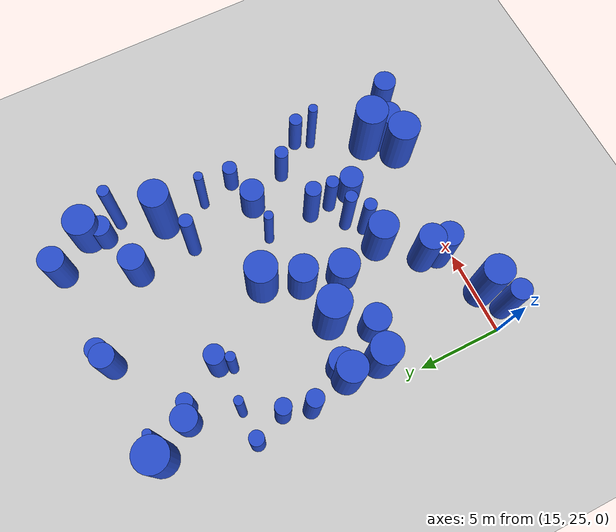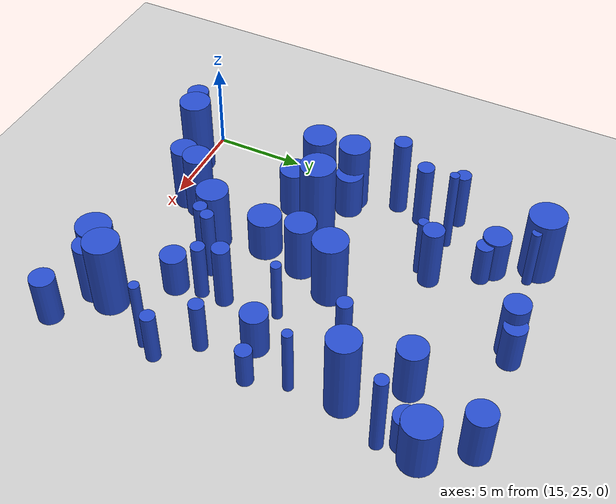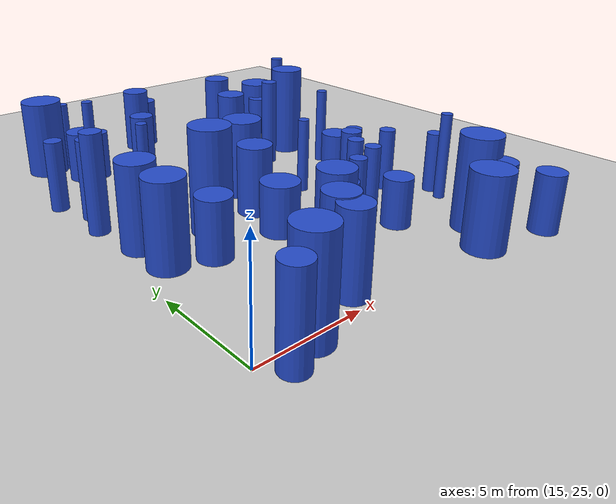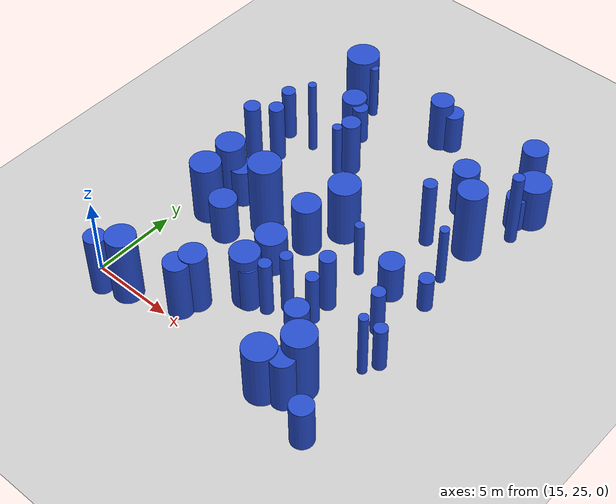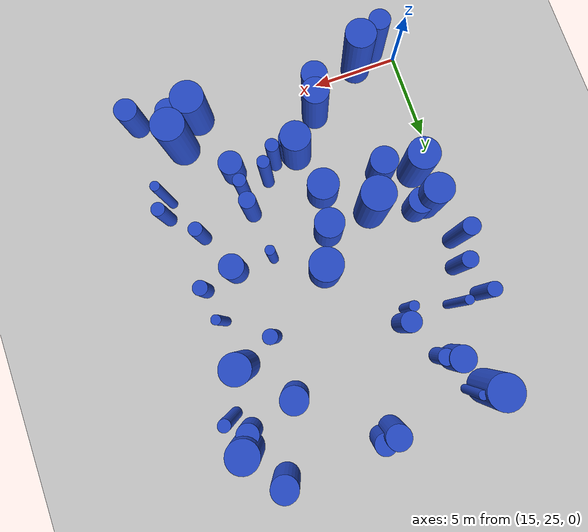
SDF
<sdf version="1.6">
 <world name="default">
  <model name="ground_plane">
   <static>1</static>
   <link name="link">
    <collision name="collision">
     <geometry><plane><normal>0 0 1</normal><size>100 100</size></plane></geometry>
     <surface><friction><ode><mu>100</mu><mu2>50</mu2></ode></friction></surface>
    </collision>
    <visual name="visual">
     <cast_shadows>0</cast_shadows>
     <geometry><plane><normal>0 0 1</normal><size>100 100</size></plane></geometry>
     <material>
      <script><uri>file://media/materials/scripts/gazebo.material</uri><name>Gazebo/Grey</name></script>
     </material>
    </visual>
   </link>
  </model>
  <model name="2">
   <static>0</static>
   <link name="link">
    <inertial>
     <mass>2</mass>
     <inertia><ixx>1.55938</ixx><ixy>0</ixy><ixz>0</ixz><iyy>1.55938</iyy><iyz>0</iyz><izz>0.44286</izz></inertia>
    </inertial>
    <collision name="collision">
     <geometry><cylinder><length>2.83332</length><radius>0.665477</radius></cylinder></geometry>
     <surface><contact><collide_without_contact>1</collide_without_contact></contact></surface>
    </collision>
    <visual name="visual">
     <geometry><cylinder><length>2.83332</length><radius>0.665477</radius></cylinder></geometry>
     <material>
      <script><uri>file://media/materials/scripts/gazebo.material</uri><name>Gazebo/Blue</name></script>
     </material>
    </visual>
    <gravity>0</gravity>
   </link>
   <pose>30.9281 23.9603 1.41666 0 -0 0</pose>
  </model>
  <model name="8">
   <static>0</static>
   <link name="link">
    <inertial>
     <mass>2</mass>
     <inertia><ixx>2.56634</ixx><ixy>0</ixy><ixz>0</ixz><iyy>2.56634</iyy><iyz>0</iyz><izz>0.222806</izz></inertia>
    </inertial>
    <collision name="collision">
     <geometry><cylinder><length>3.83792</length><radius>0.472024</radius></cylinder></geometry>
     <surface><contact><collide_without_contact>1</collide_without_contact></contact></surface>
    </collision>
    <visual name="visual">
     <geometry><cylinder><length>3.83792</length><radius>0.472024</radius></cylinder></geometry>
     <material>
      <script><uri>file://media/materials/scripts/gazebo.material</uri><name>Gazebo/Blue</name></script>
     </material>
    </visual>
    <gravity>0</gravity>
   </link>
   <pose>26.1172 31.3274 1.91896 0 -0 0</pose>
  </model>
  <model name="13">
   <static>0</static>
   <link name="link">
    <inertial>
     <mass>2</mass>
     <inertia><ixx>1.38583</ixx><ixy>0</ixy><ixz>0</ixz><iyy>1.38583</iyy><iyz>0</iyz><izz>0.558637</izz></inertia>
    </inertial>
    <collision name="collision">
     <geometry><cylinder><length>2.57664</length><radius>0.74742</radius></cylinder></geometry>
     <surface><contact><collide_without_contact>1</collide_without_contact></contact></surface>
    </collision>
    <visual name="visual">
     <geometry><cylinder><length>2.57664</length><radius>0.74742</radius></cylinder></geometry>
     <material>
      <script><uri>file://media/materials/scripts/gazebo.material</uri><name>Gazebo/Blue</name></script>
     </material>
    </visual>
    <gravity>0</gravity>
   </link>
   <pose>18.0491 42.9507 1.28832 0 -0 0</pose>
  </model>
  <model name="19">
   <static>0</static>
   <link name="link">
    <inertial>
     <mass>2</mass>
     <inertia><ixx>1.67962</ixx><ixy>0</ixy><ixz>0</ixz><iyy>1.67962</iyy><iyz>0</iyz><izz>0.646256</izz></inertia>
    </inertial>
    <collision name="collision">
     <geometry><cylinder><length>2.85288</length><radius>0.803901</radius></cylinder></geometry>
     <surface><contact><collide_without_contact>1</collide_without_contact></contact></surface>
    </collision>
    <visual name="visual">
     <geometry><cylinder><length>2.85288</length><radius>0.803901</radius></cylinder></geometry>
     <material>
      <script><uri>file://media/materials/scripts/gazebo.material</uri><name>Gazebo/Blue</name></script>
     </material>
    </visual>
    <gravity>0</gravity>
   </link>
   <pose>18.2862 31.439 1.42644 0 -0 0</pose>
  </model>
  <model name="22">
   <static>0</static>
   <link name="link">
    <inertial>
     <mass>2</mass>
     <inertia><ixx>1.84413</ixx><ixy>0</ixy><ixz>0</ixz><iyy>1.84413</iyy><iyz>0</iyz><izz>0.585229</izz></inertia>
    </inertial>
    <collision name="collision">
     <geometry><cylinder><length>3.05108</length><radius>0.765002</radius></cylinder></geometry>
     <surface><contact><collide_without_contact>1</collide_without_contact></contact></surface>
    </collision>
    <visual name="visual">
     <geometry><cylinder><length>3.05108</length><radius>0.765002</radius></cylinder></geometry>
     <material>
      <script><uri>file://media/materials/scripts/gazebo.material</uri><name>Gazebo/Blue</name></script>
     </material>
    </visual>
    <gravity>0</gravity>
   </link>
   <pose>29.0774 45.9975 1.52554 0 -0 0</pose>
  </model>
  <model name="26">
   <static>0</static>
   <link name="link">
    <inertial>
     <mass>2</mass>
     <inertia><ixx>1.40947</ixx><ixy>0</ixy><ixz>0</ixz><iyy>1.40947</iyy><iyz>0</iyz><izz>0.829551</izz></inertia>
    </inertial>
    <collision name="collision">
     <geometry><cylinder><length>2.44298</length><radius>0.910797</radius></cylinder></geometry>
     <surface><contact><collide_without_contact>1</collide_without_contact></contact></surface>
    </collision>
    <visual name="visual">
     <geometry><cylinder><length>2.44298</length><radius>0.910797</radius></cylinder></geometry>
     <material>
      <script><uri>file://media/materials/scripts/gazebo.material</uri><name>Gazebo/Blue</name></script>
     </material>
    </visual>
    <gravity>0</gravity>
   </link>
   <pose>21.8699 31.4897 1.22149 0 -0 0</pose>
  </model>
  <model name="27">
   <static>0</static>
   <link name="link">
    <inertial>
     <mass>2</mass>
     <inertia><ixx>2.58788</ixx><ixy>0</ixy><ixz>0</ixz><iyy>2.58788</iyy><iyz>0</iyz><izz>0.212332</izz></inertia>
    </inertial>
    <collision name="collision">
     <geometry><cylinder><length>3.85879</length><radius>0.460795</radius></cylinder></geometry>
     <surface><contact><collide_without_contact>1</collide_without_contact></contact></surface>
    </collision>
    <visual name="visual">
     <geometry><cylinder><length>3.85879</length><radius>0.460795</radius></cylinder></geometry>
     <material>
      <script><uri>file://media/materials/scripts/gazebo.material</uri><name>Gazebo/Blue</name></script>
     </material>
    </visual>
    <gravity>0</gravity>
   </link>
   <pose>16.1431 38.1561 1.92939 0 -0 0</pose>
  </model>
  <model name="31">
   <static>0</static>
   <link name="link">
    <inertial>
     <mass>2</mass>
     <inertia><ixx>4.54322</ixx><ixy>0</ixy><ixz>0</ixz><iyy>4.54322</iyy><iyz>0</iyz><izz>0.904882</izz></inertia>
    </inertial>
    <collision name="collision">
     <geometry><cylinder><length>4.95426</length><radius>0.951253</radius></cylinder></geometry>
     <surface><contact><collide_without_contact>1</collide_without_contact></contact></surface>
    </collision>
    <visual name="visual">
     <geometry><cylinder><length>4.95426</length><radius>0.951253</radius></cylinder></geometry>
     <material>
      <script><uri>file://media/materials/scripts/gazebo.material</uri><name>Gazebo/Blue</name></script>
     </material>
    </visual>
    <gravity>0</gravity>
   </link>
   <pose>19.6267 33.4845 2.47713 0 -0 0</pose>
  </model>
  <model name="45">
   <static>0</static>
   <link name="link">
    <inertial>
     <mass>2</mass>
     <inertia><ixx>1.79897</ixx><ixy>0</ixy><ixz>0</ixz><iyy>1.79897</iyy><iyz>0</iyz><izz>0.441379</izz></inertia>
    </inertial>
    <collision name="collision">
     <geometry><cylinder><length>3.07729</length><radius>0.664364</radius></cylinder></geometry>
     <surface><contact><collide_without_contact>1</collide_without_contact></contact></surface>
    </collision>
    <visual name="visual">
     <geometry><cylinder><length>3.07729</length><radius>0.664364</radius></cylinder></geometry>
     <material>
      <script><uri>file://media/materials/scripts/gazebo.material</uri><name>Gazebo/Blue</name></script>
     </material>
    </visual>
    <gravity>0</gravity>
   </link>
   <pose>22.8185 28.6538 1.53864 0 -0 0</pose>
  </model>
  <model name="53">
   <static>0</static>
   <link name="link">
    <inertial>
     <mass>2</mass>
     <inertia><ixx>2.60897</ixx><ixy>0</ixy><ixz>0</ixz><iyy>2.60897</iyy><iyz>0</iyz><izz>0.17796</izz></inertia>
    </inertial>
    <collision name="collision">
     <geometry><cylinder><length>3.88844</length><radius>0.421853</radius></cylinder></geometry>
     <surface><contact><collide_without_contact>1</collide_without_contact></contact></surface>
    </collision>
    <visual name="visual">
     <geometry><cylinder><length>3.88844</length><radius>0.421853</radius></cylinder></geometry>
     <material>
      <script><uri>file://media/materials/scripts/gazebo.material</uri><name>Gazebo/Blue</name></script>
     </material>
    </visual>
    <gravity>0</gravity>
   </link>
   <pose>16.5759 34.2285 1.94422 0 -0 0</pose>
  </model>
  <model name="57">
   <static>0</static>
   <link name="link">
    <inertial>
     <mass>2</mass>
     <inertia><ixx>2.18418</ixx><ixy>0</ixy><ixz>0</ixz><iyy>2.18418</iyy><iyz>0</iyz><izz>0.482198</izz></inertia>
    </inertial>
    <collision name="collision">
     <geometry><cylinder><length>3.41445</length><radius>0.694405</radius></cylinder></geometry>
     <surface><contact><collide_without_contact>1</collide_without_contact></contact></surface>
    </collision>
    <visual name="visual">
     <geometry><cylinder><length>3.41445</length><radius>0.694405</radius></cylinder></geometry>
     <material>
      <script><uri>file://media/materials/scripts/gazebo.material</uri><name>Gazebo/Blue</name></script>
     </material>
    </visual>
    <gravity>0</gravity>
   </link>
   <pose>22.7422 45.4386 1.70723 0 -0 0</pose>
  </model>
  <model name="60">
   <static>0</static>
   <link name="link">
    <inertial>
     <mass>2</mass>
     <inertia><ixx>2.88942</ixx><ixy>0</ixy><ixz>0</ixz><iyy>2.88942</iyy><iyz>0</iyz><izz>0.374804</izz></inertia>
    </inertial>
    <collision name="collision">
     <geometry><cylinder><length>4.02643</length><radius>0.612213</radius></cylinder></geometry>
     <surface><contact><collide_without_contact>1</collide_without_contact></contact></surface>
    </collision>
    <visual name="visual">
     <geometry><cylinder><length>4.02643</length><radius>0.612213</radius></cylinder></geometry>
     <material>
      <script><uri>file://media/materials/scripts/gazebo.material</uri><name>Gazebo/Blue</name></script>
     </material>
    </visual>
    <gravity>0</gravity>
   </link>
   <pose>16.028 24.169 2.01321 0 -0 0</pose>
  </model>
  <model name="63">
   <static>0</static>
   <link name="link">
    <inertial>
     <mass>2</mass>
     <inertia><ixx>1.61709</ixx><ixy>0</ixy><ixz>0</ixz><iyy>1.61709</iyy><iyz>0</iyz><izz>0.150907</izz></inertia>
    </inertial>
    <collision name="collision">
     <geometry><cylinder><length>3.04135</length><radius>0.388467</radius></cylinder></geometry>
     <surface><contact><collide_without_contact>1</collide_without_contact></contact></surface>
    </collision>
    <visual name="visual">
     <geometry><cylinder><length>3.04135</length><radius>0.388467</radius></cylinder></geometry>
     <material>
      <script><uri>file://media/materials/scripts/gazebo.material</uri><name>Gazebo/Blue</name></script>
     </material>
    </visual>
    <gravity>0</gravity>
   </link>
   <pose>30.8493 30.0189 1.52067 0 -0 0</pose>
  </model>
  <model name="70">
   <static>0</static>
   <link name="link">
    <inertial>
     <mass>2</mass>
     <inertia>
      <ixx>4.12077</ixx>
      <ixy>0</ixy>
      <ixz>0</ixz>
      <iyy>4.12077</iyy>
      <iyz>0</iyz>
      <izz>0.0638492</izz>
     </inertia>
    </inertial>
    <collision name="collision">
     <geometry><cylinder><length>4.95309</length><radius>0.252684</radius></cylinder></geometry>
     <surface><contact><collide_without_contact>1</collide_without_contact></contact></surface>
    </collision>
    <visual name="visual">
     <geometry><cylinder><length>4.95309</length><radius>0.252684</radius></cylinder></geometry>
     <material>
      <script><uri>file://media/materials/scripts/gazebo.material</uri><name>Gazebo/Blue</name></script>
     </material>
    </visual>
    <gravity>0</gravity>
   </link>
   <pose>17.248 40.06 2.47654 0 -0 0</pose>
  </model>
  <model name="74">
   <static>0</static>
   <link name="link">
    <inertial>
     <mass>2</mass>
     <inertia><ixx>3.58592</ixx><ixy>0</ixy><ixz>0</ixz><iyy>3.58592</iyy><iyz>0</iyz><izz>0.162136</izz></inertia>
    </inertial>
    <collision name="collision">
     <geometry><cylinder><length>4.58575</length><radius>0.402661</radius></cylinder></geometry>
     <surface><contact><collide_without_contact>1</collide_without_contact></contact></surface>
    </collision>
    <visual name="visual">
     <geometry><cylinder><length>4.58575</length><radius>0.402661</radius></cylinder></geometry>
     <material>
      <script><uri>file://media/materials/scripts/gazebo.material</uri><name>Gazebo/Blue</name></script>
     </material>
    </visual>
    <gravity>0</gravity>
   </link>
   <pose>27.2099 38.5082 2.29288 0 -0 0</pose>
  </model>
  <model name="79">
   <static>0</static>
   <link name="link">
    <inertial>
     <mass>2</mass>
     <inertia><ixx>2.97852</ixx><ixy>0</ixy><ixz>0</ixz><iyy>2.97852</iyy><iyz>0</iyz><izz>0.125524</izz></inertia>
    </inertial>
    <collision name="collision">
     <geometry><cylinder><length>4.18265</length><radius>0.354294</radius></cylinder></geometry>
     <surface><contact><collide_without_contact>1</collide_without_contact></contact></surface>
    </collision>
    <visual name="visual">
     <geometry><cylinder><length>4.18265</length><radius>0.354294</radius></cylinder></geometry>
     <material>
      <script><uri>file://media/materials/scripts/gazebo.material</uri><name>Gazebo/Blue</name></script>
     </material>
    </visual>
    <gravity>0</gravity>
   </link>
   <pose>24.6514 29.743 2.09133 0 -0 0</pose>
  </model>
  <model name="82">
   <static>0</static>
   <link name="link">
    <inertial>
     <mass>2</mass>
     <inertia><ixx>1.92476</ixx><ixy>0</ixy><ixz>0</ixz><iyy>1.92476</iyy><iyz>0</iyz><izz>0.900452</izz></inertia>
    </inertial>
    <collision name="collision">
     <geometry><cylinder><length>2.97442</length><radius>0.948921</radius></cylinder></geometry>
     <surface><contact><collide_without_contact>1</collide_without_contact></contact></surface>
    </collision>
    <visual name="visual">
     <geometry><cylinder><length>2.97442</length><radius>0.948921</radius></cylinder></geometry>
     <material>
      <script><uri>file://media/materials/scripts/gazebo.material</uri><name>Gazebo/Blue</name></script>
     </material>
    </visual>
    <gravity>0</gravity>
   </link>
   <pose>30.6164 43.7903 1.48721 0 -0 0</pose>
  </model>
  <model name="83">
   <static>0</static>
   <link name="link">
    <inertial>
     <mass>2</mass>
     <inertia><ixx>3.76364</ixx><ixy>0</ixy><ixz>0</ixz><iyy>3.76364</iyy><iyz>0</iyz><izz>0.745798</izz></inertia>
    </inertial>
    <collision name="collision">
     <geometry><cylinder><length>4.51048</length><radius>0.863596</radius></cylinder></geometry>
     <surface><contact><collide_without_contact>1</collide_without_contact></contact></surface>
    </collision>
    <visual name="visual">
     <geometry><cylinder><length>4.51048</length><radius>0.863596</radius></cylinder></geometry>
     <material>
      <script><uri>file://media/materials/scripts/gazebo.material</uri><name>Gazebo/Blue</name></script>
     </material>
    </visual>
    <gravity>0</gravity>
   </link>
   <pose>17.4087 24.8194 2.25524 0 -0 0</pose>
  </model>
  <model name="90">
   <static>0</static>
   <link name="link">
    <inertial>
     <mass>2</mass>
     <inertia><ixx>2.41035</ixx><ixy>0</ixy><ixz>0</ixz><iyy>2.41035</iyy><iyz>0</iyz><izz>0.324501</izz></inertia>
    </inertial>
    <collision name="collision">
     <geometry><cylinder><length>3.67268</length><radius>0.56965</radius></cylinder></geometry>
     <surface><contact><collide_without_contact>1</collide_without_contact></contact></surface>
    </collision>
    <visual name="visual">
     <geometry><cylinder><length>3.67268</length><radius>0.56965</radius></cylinder></geometry>
     <material>
      <script><uri>file://media/materials/scripts/gazebo.material</uri><name>Gazebo/Blue</name></script>
     </material>
    </visual>
    <gravity>0</gravity>
   </link>
   <pose>20.1419 40.1772 1.83634 0 -0 0</pose>
  </model>
  <model name="99">
   <static>0</static>
   <link name="link">
    <inertial>
     <mass>2</mass>
     <inertia><ixx>2.24551</ixx><ixy>0</ixy><ixz>0</ixz><iyy>2.24551</iyy><iyz>0</iyz><izz>0.698313</izz></inertia>
    </inertial>
    <collision name="collision">
     <geometry><cylinder><length>3.37315</length><radius>0.835651</radius></cylinder></geometry>
     <surface><contact><collide_without_contact>1</collide_without_contact></contact></surface>
    </collision>
    <visual name="visual">
     <geometry><cylinder><length>3.37315</length><radius>0.835651</radius></cylinder></geometry>
     <material>
      <script><uri>file://media/materials/scripts/gazebo.material</uri><name>Gazebo/Blue</name></script>
     </material>
    </visual>
    <gravity>0</gravity>
   </link>
   <pose>22.3578 33.8355 1.68657 0 -0 0</pose>
  </model>
  <model name="100">
   <static>0</static>
   <link name="link">
    <inertial>
     <mass>2</mass>
     <inertia><ixx>1.16576</ixx><ixy>0</ixy><ixz>0</ixz><iyy>1.16576</iyy><iyz>0</iyz><izz>0.479179</izz></inertia>
    </inertial>
    <collision name="collision">
     <geometry><cylinder><length>2.35733</length><radius>0.692228</radius></cylinder></geometry>
     <surface><contact><collide_without_contact>1</collide_without_contact></contact></surface>
    </collision>
    <visual name="visual">
     <geometry><cylinder><length>2.35733</length><radius>0.692228</radius></cylinder></geometry>
     <material>
      <script><uri>file://media/materials/scripts/gazebo.material</uri><name>Gazebo/Blue</name></script>
     </material>
    </visual>
    <gravity>0</gravity>
   </link>
   <pose>26.3754 28.6172 1.17867 0 -0 0</pose>
  </model>
  <model name="102">
   <static>0</static>
   <link name="link">
    <inertial>
     <mass>2</mass>
     <inertia><ixx>2.03174</ixx><ixy>0</ixy><ixz>0</ixz><iyy>2.03174</iyy><iyz>0</iyz><izz>0.142404</izz></inertia>
    </inertial>
    <collision name="collision">
     <geometry><cylinder><length>3.42975</length><radius>0.377365</radius></cylinder></geometry>
     <surface><contact><collide_without_contact>1</collide_without_contact></contact></surface>
    </collision>
    <visual name="visual">
     <geometry><cylinder><length>3.42975</length><radius>0.377365</radius></cylinder></geometry>
     <material>
      <script><uri>file://media/materials/scripts/gazebo.material</uri><name>Gazebo/Blue</name></script>
     </material>
    </visual>
    <gravity>0</gravity>
   </link>
   <pose>26.1844 30.0475 1.71488 0 -0 0</pose>
  </model>
  <model name="105">
   <static>0</static>
   <link name="link">
    <inertial>
     <mass>2</mass>
     <inertia><ixx>2.06606</ixx><ixy>0</ixy><ixz>0</ixz><iyy>2.06606</iyy><iyz>0</iyz><izz>0.17566</izz></inertia>
    </inertial>
    <collision name="collision">
     <geometry><cylinder><length>3.4452</length><radius>0.419118</radius></cylinder></geometry>
     <surface><contact><collide_without_contact>1</collide_without_contact></contact></surface>
    </collision>
    <visual name="visual">
     <geometry><cylinder><length>3.4452</length><radius>0.419118</radius></cylinder></geometry>
     <material>
      <script><uri>file://media/materials/scripts/gazebo.material</uri><name>Gazebo/Blue</name></script>
     </material>
    </visual>
    <gravity>0</gravity>
   </link>
   <pose>15.3781 40.0314 1.7226 0 -0 0</pose>
  </model>
  <model name="115">
   <static>0</static>
   <link name="link">
    <inertial>
     <mass>2</mass>
     <inertia><ixx>3.11202</ixx><ixy>0</ixy><ixz>0</ixz><iyy>3.11202</iyy><iyz>0</iyz><izz>0.73503</izz></inertia>
    </inertial>
    <collision name="collision">
     <geometry><cylinder><length>4.05796</length><radius>0.857339</radius></cylinder></geometry>
     <surface><contact><collide_without_contact>1</collide_without_contact></contact></surface>
    </collision>
    <visual name="visual">
     <geometry><cylinder><length>4.05796</length><radius>0.857339</radius></cylinder></geometry>
     <material>
      <script><uri>file://media/materials/scripts/gazebo.material</uri><name>Gazebo/Blue</name></script>
     </material>
    </visual>
    <gravity>0</gravity>
   </link>
   <pose>16.3497 34.101 2.02898 0 -0 0</pose>
  </model>
  <model name="117">
   <static>0</static>
   <link name="link">
    <inertial>
     <mass>2</mass>
     <inertia><ixx>2.7452</ixx><ixy>0</ixy><ixz>0</ixz><iyy>2.7452</iyy><iyz>0</iyz><izz>0.535852</izz></inertia>
    </inertial>
    <collision name="collision">
     <geometry><cylinder><length>3.85534</length><radius>0.732019</radius></cylinder></geometry>
     <surface><contact><collide_without_contact>1</collide_without_contact></contact></surface>
    </collision>
    <visual name="visual">
     <geometry><cylinder><length>3.85534</length><radius>0.732019</radius></cylinder></geometry>
     <material>
      <script><uri>file://media/materials/scripts/gazebo.material</uri><name>Gazebo/Blue</name></script>
     </material>
    </visual>
    <gravity>0</gravity>
   </link>
   <pose>20.4326 25.8517 1.92767 0 -0 0</pose>
  </model>
  <model name="120">
   <static>0</static>
   <link name="link">
    <inertial>
     <mass>2</mass>
     <inertia><ixx>1.34975</ixx><ixy>0</ixy><ixz>0</ixz><iyy>1.34975</iyy><iyz>0</iyz><izz>0.510108</izz></inertia>
    </inertial>
    <collision name="collision">
     <geometry><cylinder><length>2.56285</length><radius>0.714219</radius></cylinder></geometry>
     <surface><contact><collide_without_contact>1</collide_without_contact></contact></surface>
    </collision>
    <visual name="visual">
     <geometry><cylinder><length>2.56285</length><radius>0.714219</radius></cylinder></geometry>
     <material>
      <script><uri>file://media/materials/scripts/gazebo.material</uri><name>Gazebo/Blue</name></script>
     </material>
    </visual>
    <gravity>0</gravity>
   </link>
   <pose>28.1202 34.2139 1.28142 0 -0 0</pose>
  </model>
  <model name="123">
   <static>0</static>
   <link name="link">
    <inertial>
     <mass>2</mass>
     <inertia><ixx>3.08274</ixx><ixy>0</ixy><ixz>0</ixz><iyy>3.08274</iyy><iyz>0</iyz><izz>0.826748</izz></inertia>
    </inertial>
    <collision name="collision">
     <geometry><cylinder><length>4.00202</length><radius>0.909257</radius></cylinder></geometry>
     <surface><contact><collide_without_contact>1</collide_without_contact></contact></surface>
    </collision>
    <visual name="visual">
     <geometry><cylinder><length>4.00202</length><radius>0.909257</radius></cylinder></geometry>
     <material>
      <script><uri>file://media/materials/scripts/gazebo.material</uri><name>Gazebo/Blue</name></script>
     </material>
    </visual>
    <gravity>0</gravity>
   </link>
   <pose>16.4086 32.052 2.00101 0 -0 0</pose>
  </model>
  <model name="126">
   <static>0</static>
   <link name="link">
    <inertial>
     <mass>2</mass>
     <inertia><ixx>1.99303</ixx><ixy>0</ixy><ixz>0</ixz><iyy>1.99303</iyy><iyz>0</iyz><izz>0.607698</izz></inertia>
    </inertial>
    <collision name="collision">
     <geometry><cylinder><length>3.18356</length><radius>0.77955</radius></cylinder></geometry>
     <surface><contact><collide_without_contact>1</collide_without_contact></contact></surface>
    </collision>
    <visual name="visual">
     <geometry><cylinder><length>3.18356</length><radius>0.77955</radius></cylinder></geometry>
     <material>
      <script><uri>file://media/materials/scripts/gazebo.material</uri><name>Gazebo/Blue</name></script>
     </material>
    </visual>
    <gravity>0</gravity>
   </link>
   <pose>27.1803 41.9705 1.59178 0 -0 0</pose>
  </model>
  <model name="128">
   <static>0</static>
   <link name="link">
    <inertial>
     <mass>2</mass>
     <inertia><ixx>2.677</ixx><ixy>0</ixy><ixz>0</ixz><iyy>2.677</iyy><iyz>0</iyz><izz>0.902624</izz></inertia>
    </inertial>
    <collision name="collision">
     <geometry><cylinder><length>3.65433</length><radius>0.950065</radius></cylinder></geometry>
     <surface><contact><collide_without_contact>1</collide_without_contact></contact></surface>
    </collision>
    <visual name="visual">
     <geometry><cylinder><length>3.65433</length><radius>0.950065</radius></cylinder></geometry>
     <material>
      <script><uri>file://media/materials/scripts/gazebo.material</uri><name>Gazebo/Blue</name></script>
     </material>
    </visual>
    <gravity>0</gravity>
   </link>
   <pose>27.4181 24.7427 1.82716 0 -0 0</pose>
  </model>
  <model name="129">
   <static>0</static>
   <link name="link">
    <inertial>
     <mass>2</mass>
     <inertia><ixx>4.2289</ixx><ixy>0</ixy><ixz>0</ixz><iyy>4.2289</iyy><iyz>0</iyz><izz>0.722048</izz></inertia>
    </inertial>
    <collision name="collision">
     <geometry><cylinder><length>4.81739</length><radius>0.849734</radius></cylinder></geometry>
     <surface><contact><collide_without_contact>1</collide_without_contact></contact></surface>
    </collision>
    <visual name="visual">
     <geometry><cylinder><length>4.81739</length><radius>0.849734</radius></cylinder></geometry>
     <material>
      <script><uri>file://media/materials/scripts/gazebo.material</uri><name>Gazebo/Blue</name></script>
     </material>
    </visual>
    <gravity>0</gravity>
   </link>
   <pose>29.3469 39.4504 2.40869 0 -0 0</pose>
  </model>
  <model name="130">
   <static>0</static>
   <link name="link">
    <inertial>
     <mass>2</mass>
     <inertia><ixx>3.12542</ixx><ixy>0</ixy><ixz>0</ixz><iyy>3.12542</iyy><iyz>0</iyz><izz>0.992962</izz></inertia>
    </inertial>
    <collision name="collision">
     <geometry><cylinder><length>3.9716</length><radius>0.996475</radius></cylinder></geometry>
     <surface><contact><collide_without_contact>1</collide_without_contact></contact></surface>
    </collision>
    <visual name="visual">
     <geometry><cylinder><length>3.9716</length><radius>0.996475</radius></cylinder></geometry>
     <material>
      <script><uri>file://media/materials/scripts/gazebo.material</uri><name>Gazebo/Blue</name></script>
     </material>
    </visual>
    <gravity>0</gravity>
   </link>
   <pose>16.9289 45.0492 1.9858 0 -0 0</pose>
  </model>
  <model name="136">
   <static>0</static>
   <link name="link">
    <inertial>
     <mass>2</mass>
     <inertia>
      <ixx>2.36535</ixx>
      <ixy>0</ixy>
      <ixz>0</ixz>
      <iyy>2.36535</iyy>
      <iyz>0</iyz>
      <izz>0.0754725</izz>
     </inertia>
    </inertial>
    <collision name="collision">
     <geometry><cylinder><length>3.73706</length><radius>0.274723</radius></cylinder></geometry>
     <surface><contact><collide_without_contact>1</collide_without_contact></contact></surface>
    </collision>
    <visual name="visual">
     <geometry><cylinder><length>3.73706</length><radius>0.274723</radius></cylinder></geometry>
     <material>
      <script><uri>file://media/materials/scripts/gazebo.material</uri><name>Gazebo/Blue</name></script>
     </material>
    </visual>
    <gravity>0</gravity>
   </link>
   <pose>25.8349 34.2419 1.86853 0 -0 0</pose>
  </model>
  <model name="138">
   <static>0</static>
   <link name="link">
    <inertial>
     <mass>2</mass>
     <inertia>
      <ixx>2.11905</ixx>
      <ixy>0</ixy>
      <ixz>0</ixz>
      <iyy>2.11905</iyy>
      <iyz>0</iyz>
      <izz>0.0820105</izz>
     </inertia>
    </inertial>
    <collision name="collision">
     <geometry><cylinder><length>3.53105</length><radius>0.286375</radius></cylinder></geometry>
     <surface><contact><collide_without_contact>1</collide_without_contact></contact></surface>
    </collision>
    <visual name="visual">
     <geometry><cylinder><length>3.53105</length><radius>0.286375</radius></cylinder></geometry>
     <material>
      <script><uri>file://media/materials/scripts/gazebo.material</uri><name>Gazebo/Blue</name></script>
     </material>
    </visual>
    <gravity>0</gravity>
   </link>
   <pose>19.6943 39.4602 1.76552 0 -0 0</pose>
  </model>
  <model name="141">
   <static>0</static>
   <link name="link">
    <inertial>
     <mass>2</mass>
     <inertia><ixx>2.67739</ixx><ixy>0</ixy><ixz>0</ixz><iyy>2.67739</iyy><iyz>0</iyz><izz>0.739102</izz></inertia>
    </inertial>
    <collision name="collision">
     <geometry><cylinder><length>3.72116</length><radius>0.85971</radius></cylinder></geometry>
     <surface><contact><collide_without_contact>1</collide_without_contact></contact></surface>
    </collision>
    <visual name="visual">
     <geometry><cylinder><length>3.72116</length><radius>0.85971</radius></cylinder></geometry>
     <material>
      <script><uri>file://media/materials/scripts/gazebo.material</uri><name>Gazebo/Blue</name></script>
     </material>
    </visual>
    <gravity>0</gravity>
   </link>
   <pose>22.5502 28.8034 1.86058 0 -0 0</pose>
  </model>
  <model name="144">
   <static>0</static>
   <link name="link">
    <inertial>
     <mass>2</mass>
     <inertia><ixx>2.96724</ixx><ixy>0</ixy><ixz>0</ixz><iyy>2.96724</iyy><iyz>0</iyz><izz>0.88856</izz></inertia>
    </inertial>
    <collision name="collision">
     <geometry><cylinder><length>3.89073</length><radius>0.942635</radius></cylinder></geometry>
     <surface><contact><collide_without_contact>1</collide_without_contact></contact></surface>
    </collision>
    <visual name="visual">
     <geometry><cylinder><length>3.89073</length><radius>0.942635</radius></cylinder></geometry>
     <material>
      <script><uri>file://media/materials/scripts/gazebo.material</uri><name>Gazebo/Blue</name></script>
     </material>
    </visual>
    <gravity>0</gravity>
   </link>
   <pose>23.2912 35.9452 1.94536 0 -0 0</pose>
  </model>
  <model name="147">
   <static>0</static>
   <link name="link">
    <inertial>
     <mass>2</mass>
     <inertia><ixx>1.3619</ixx><ixy>0</ixy><ixz>0</ixz><iyy>1.3619</iyy><iyz>0</iyz><izz>0.369863</izz></inertia>
    </inertial>
    <collision name="collision">
     <geometry><cylinder><length>2.65741</length><radius>0.608163</radius></cylinder></geometry>
     <surface><contact><collide_without_contact>1</collide_without_contact></contact></surface>
    </collision>
    <visual name="visual">
     <geometry><cylinder><length>2.65741</length><radius>0.608163</radius></cylinder></geometry>
     <material>
      <script><uri>file://media/materials/scripts/gazebo.material</uri><name>Gazebo/Blue</name></script>
     </material>
    </visual>
    <gravity>0</gravity>
   </link>
   <pose>23.4438 45.6917 1.3287 0 -0 0</pose>
  </model>
  <model name="154">
   <static>0</static>
   <link name="link">
    <inertial>
     <mass>2</mass>
     <inertia><ixx>1.7028</ixx><ixy>0</ixy><ixz>0</ixz><iyy>1.7028</iyy><iyz>0</iyz><izz>0.159402</izz></inertia>
    </inertial>
    <collision name="collision">
     <geometry><cylinder><length>3.12067</length><radius>0.399252</radius></cylinder></geometry>
     <surface><contact><collide_without_contact>1</collide_without_contact></contact></surface>
    </collision>
    <visual name="visual">
     <geometry><cylinder><length>3.12067</length><radius>0.399252</radius></cylinder></geometry>
     <material>
      <script><uri>file://media/materials/scripts/gazebo.material</uri><name>Gazebo/Blue</name></script>
     </material>
    </visual>
    <gravity>0</gravity>
   </link>
   <pose>29.2638 31.7399 1.56033 0 -0 0</pose>
  </model>
  <model name="160">
   <static>0</static>
   <link name="link">
    <inertial>
     <mass>2</mass>
     <inertia><ixx>1.12383</ixx><ixy>0</ixy><ixz>0</ixz><iyy>1.12383</iyy><iyz>0</iyz><izz>0.220587</izz></inertia>
    </inertial>
    <collision name="collision">
     <geometry><cylinder><length>2.46601</length><radius>0.469667</radius></cylinder></geometry>
     <surface><contact><collide_without_contact>1</collide_without_contact></contact></surface>
    </collision>
    <visual name="visual">
     <geometry><cylinder><length>2.46601</length><radius>0.469667</radius></cylinder></geometry>
     <material>
      <script><uri>file://media/materials/scripts/gazebo.material</uri><name>Gazebo/Blue</name></script>
     </material>
    </visual>
    <gravity>0</gravity>
   </link>
   <pose>18.8373 42.5814 1.233 0 -0 0</pose>
  </model>
  <model name="162">
   <static>0</static>
   <link name="link">
    <inertial>
     <mass>2</mass>
     <inertia><ixx>3.96253</ixx><ixy>0</ixy><ixz>0</ixz><iyy>3.96253</iyy><iyz>0</iyz><izz>0.116789</izz></inertia>
    </inertial>
    <collision name="collision">
     <geometry><cylinder><length>4.83992</length><radius>0.341744</radius></cylinder></geometry>
     <surface><contact><collide_without_contact>1</collide_without_contact></contact></surface>
    </collision>
    <visual name="visual">
     <geometry><cylinder><length>4.83992</length><radius>0.341744</radius></cylinder></geometry>
     <material>
      <script><uri>file://media/materials/scripts/gazebo.material</uri><name>Gazebo/Blue</name></script>
     </material>
    </visual>
    <gravity>0</gravity>
   </link>
   <pose>30.6669 41.8212 2.41996 0 -0 0</pose>
  </model>
  <model name="172">
   <static>0</static>
   <link name="link">
    <inertial>
     <mass>2</mass>
     <inertia><ixx>1.40764</ixx><ixy>0</ixy><ixz>0</ixz><iyy>1.40764</iyy><iyz>0</iyz><izz>0.557029</izz></inertia>
    </inertial>
    <collision name="collision">
     <geometry><cylinder><length>2.60284</length><radius>0.746344</radius></cylinder></geometry>
     <surface><contact><collide_without_contact>1</collide_without_contact></contact></surface>
    </collision>
    <visual name="visual">
     <geometry><cylinder><length>2.60284</length><radius>0.746344</radius></cylinder></geometry>
     <material>
      <script><uri>file://media/materials/scripts/gazebo.material</uri><name>Gazebo/Blue</name></script>
     </material>
    </visual>
    <gravity>0</gravity>
   </link>
   <pose>17.0703 34.1902 1.30142 0 -0 0</pose>
  </model>
  <model name="175">
   <static>0</static>
   <link name="link">
    <inertial>
     <mass>2</mass>
     <inertia><ixx>3.81884</ixx><ixy>0</ixy><ixz>0</ixz><iyy>3.81884</iyy><iyz>0</iyz><izz>0.234939</izz></inertia>
    </inertial>
    <collision name="collision">
     <geometry><cylinder><length>4.71256</length><radius>0.484705</radius></cylinder></geometry>
     <surface><contact><collide_without_contact>1</collide_without_contact></contact></surface>
    </collision>
    <visual name="visual">
     <geometry><cylinder><length>4.71256</length><radius>0.484705</radius></cylinder></geometry>
     <material>
      <script><uri>file://media/materials/scripts/gazebo.material</uri><name>Gazebo/Blue</name></script>
     </material>
    </visual>
    <gravity>0</gravity>
   </link>
   <pose>15.7049 36.614 2.35628 0 -0 0</pose>
  </model>
  <model name="180">
   <static>0</static>
   <link name="link">
    <inertial>
     <mass>2</mass>
     <inertia><ixx>2.42849</ixx><ixy>0</ixy><ixz>0</ixz><iyy>2.42849</iyy><iyz>0</iyz><izz>0.141849</izz></inertia>
    </inertial>
    <collision name="collision">
     <geometry><cylinder><length>3.76103</length><radius>0.376628</radius></cylinder></geometry>
     <surface><contact><collide_without_contact>1</collide_without_contact></contact></surface>
    </collision>
    <visual name="visual">
     <geometry><cylinder><length>3.76103</length><radius>0.376628</radius></cylinder></geometry>
     <material>
      <script><uri>file://media/materials/scripts/gazebo.material</uri><name>Gazebo/Blue</name></script>
     </material>
    </visual>
    <gravity>0</gravity>
   </link>
   <pose>23.9123 28.8909 1.88052 0 -0 0</pose>
  </model>
  <model name="181">
   <static>0</static>
   <link name="link">
    <inertial>
     <mass>2</mass>
     <inertia><ixx>3.74153</ixx><ixy>0</ixy><ixz>0</ixz><iyy>3.74153</iyy><iyz>0</iyz><izz>0.892176</izz></inertia>
    </inertial>
    <collision name="collision">
     <geometry><cylinder><length>4.44665</length><radius>0.944551</radius></cylinder></geometry>
     <surface><contact><collide_without_contact>1</collide_without_contact></contact></surface>
    </collision>
    <visual name="visual">
     <geometry><cylinder><length>4.44665</length><radius>0.944551</radius></cylinder></geometry>
     <material>
      <script><uri>file://media/materials/scripts/gazebo.material</uri><name>Gazebo/Blue</name></script>
     </material>
    </visual>
    <gravity>0</gravity>
   </link>
   <pose>28.7835 26.22 2.22332 0 -0 0</pose>
  </model>
  <model name="183">
   <static>0</static>
   <link name="link">
    <inertial>
     <mass>2</mass>
     <inertia>
      <ixx>2.21192</ixx>
      <ixy>0</ixy>
      <ixz>0</ixz>
      <iyy>2.21192</iyy>
      <iyz>0</iyz>
      <izz>0.0688999</izz>
     </inertia>
    </inertial>
    <collision name="collision">
     <geometry><cylinder><length>3.61453</length><radius>0.262488</radius></cylinder></geometry>
     <surface><contact><collide_without_contact>1</collide_without_contact></contact></surface>
    </collision>
    <visual name="visual">
     <geometry><cylinder><length>3.61453</length><radius>0.262488</radius></cylinder></geometry>
     <material>
      <script><uri>file://media/materials/scripts/gazebo.material</uri><name>Gazebo/Blue</name></script>
     </material>
    </visual>
    <gravity>0</gravity>
   </link>
   <pose>17.9871 44.8498 1.80726 0 -0 0</pose>
  </model>
  <model name="190">
   <static>0</static>
   <link name="link">
    <inertial>
     <mass>2</mass>
     <inertia><ixx>1.0233</ixx><ixy>0</ixy><ixz>0</ixz><iyy>1.0233</iyy><iyz>0</iyz><izz>0.404225</izz></inertia>
    </inertial>
    <collision name="collision">
     <geometry><cylinder><length>2.21971</length><radius>0.635787</radius></cylinder></geometry>
     <surface><contact><collide_without_contact>1</collide_without_contact></contact></surface>
    </collision>
    <visual name="visual">
     <geometry><cylinder><length>2.21971</length><radius>0.635787</radius></cylinder></geometry>
     <material>
      <script><uri>file://media/materials/scripts/gazebo.material</uri><name>Gazebo/Blue</name></script>
     </material>
    </visual>
    <gravity>0</gravity>
   </link>
   <pose>30.1249 42.9314 1.10985 0 -0 0</pose>
  </model>
  <model name="196">
   <static>0</static>
   <link name="link">
    <inertial>
     <mass>2</mass>
     <inertia><ixx>0.9402</ixx><ixy>0</ixy><ixz>0</ixz><iyy>0.9402</iyy><iyz>0</iyz><izz>0.188047</izz></inertia>
    </inertial>
    <collision name="collision">
     <geometry><cylinder><length>2.25323</length><radius>0.433644</radius></cylinder></geometry>
     <surface><contact><collide_without_contact>1</collide_without_contact></contact></surface>
    </collision>
    <visual name="visual">
     <geometry><cylinder><length>2.25323</length><radius>0.433644</radius></cylinder></geometry>
     <material>
      <script><uri>file://media/materials/scripts/gazebo.material</uri><name>Gazebo/Blue</name></script>
     </material>
    </visual>
    <gravity>0</gravity>
   </link>
   <pose>30.1171 34.7223 1.12662 0 -0 0</pose>
  </model>
  <model name="216">
   <static>0</static>
   <link name="link">
    <inertial>
     <mass>2</mass>
     <inertia><ixx>2.85535</ixx><ixy>0</ixy><ixz>0</ixz><iyy>2.85535</iyy><iyz>0</iyz><izz>0.60102</izz></inertia>
    </inertial>
    <collision name="collision">
     <geometry><cylinder><length>3.91523</length><radius>0.775255</radius></cylinder></geometry>
     <surface><contact><collide_without_contact>1</collide_without_contact></contact></surface>
    </collision>
    <visual name="visual">
     <geometry><cylinder><length>3.91523</length><radius>0.775255</radius></cylinder></geometry>
     <material>
      <script><uri>file://media/materials/scripts/gazebo.material</uri><name>Gazebo/Blue</name></script>
     </material>
    </visual>
    <gravity>0</gravity>
   </link>
   <pose>20.7043 26.813 1.95761 0 -0 0</pose>
  </model>
  <model name="221">
   <static>0</static>
   <link name="link">
    <inertial>
     <mass>2</mass>
     <inertia><ixx>2.35666</ixx><ixy>0</ixy><ixz>0</ixz><iyy>2.35666</iyy><iyz>0</iyz><izz>0.516233</izz></inertia>
    </inertial>
    <collision name="collision">
     <geometry><cylinder><length>3.54842</length><radius>0.718494</radius></cylinder></geometry>
     <surface><contact><collide_without_contact>1</collide_without_contact></contact></surface>
    </collision>
    <visual name="visual">
     <geometry><cylinder><length>3.54842</length><radius>0.718494</radius></cylinder></geometry>
     <material>
      <script><uri>file://media/materials/scripts/gazebo.material</uri><name>Gazebo/Blue</name></script>
     </material>
    </visual>
    <gravity>0</gravity>
   </link>
   <pose>28.6254 25.1105 1.77421 0 -0 0</pose>
  </model>
  <model name="222">
   <static>0</static>
   <link name="link">
    <inertial>
     <mass>2</mass>
     <inertia>
      <ixx>2.72442</ixx>
      <ixy>0</ixy>
      <ixz>0</ixz>
      <iyy>2.72442</iyy>
      <iyz>0</iyz>
      <izz>0.0740423</izz>
     </inertia>
    </inertial>
    <collision name="collision">
     <geometry><cylinder><length>4.01552</length><radius>0.272107</radius></cylinder></geometry>
     <surface><contact><collide_without_contact>1</collide_without_contact></contact></surface>
    </collision>
    <visual name="visual">
     <geometry><cylinder><length>4.01552</length><radius>0.272107</radius></cylinder></geometry>
     <material>
      <script><uri>file://media/materials/scripts/gazebo.material</uri><name>Gazebo/Blue</name></script>
     </material>
    </visual>
    <gravity>0</gravity>
   </link>
   <pose>29.5865 36.7735 2.00776 0 -0 0</pose>
  </model>
  <model name="231">
   <static>0</static>
   <link name="link">
    <inertial>
     <mass>2</mass>
     <inertia>
      <ixx>3.14707</ixx>
      <ixy>0</ixy>
      <ixz>0</ixz>
      <iyy>3.14707</iyy>
      <iyz>0</iyz>
      <izz>0.0736251</izz>
     </inertia>
    </inertial>
    <collision name="collision">
     <geometry><cylinder><length>4.3199</length><radius>0.271339</radius></cylinder></geometry>
     <surface><contact><collide_without_contact>1</collide_without_contact></contact></surface>
    </collision>
    <visual name="visual">
     <geometry><cylinder><length>4.3199</length><radius>0.271339</radius></cylinder></geometry>
     <material>
      <script><uri>file://media/materials/scripts/gazebo.material</uri><name>Gazebo/Blue</name></script>
     </material>
    </visual>
    <gravity>0</gravity>
   </link>
   <pose>30.4088 29.1587 2.15995 0 -0 0</pose>
  </model>
 </world>
</sdf>
